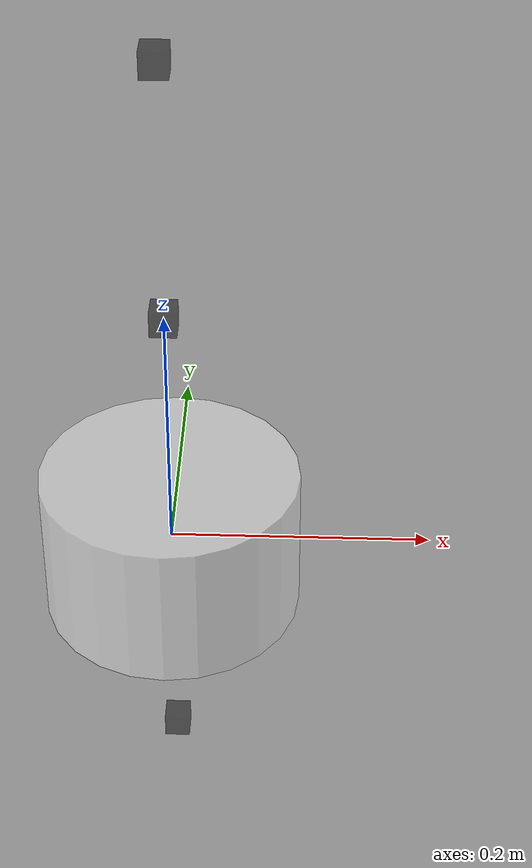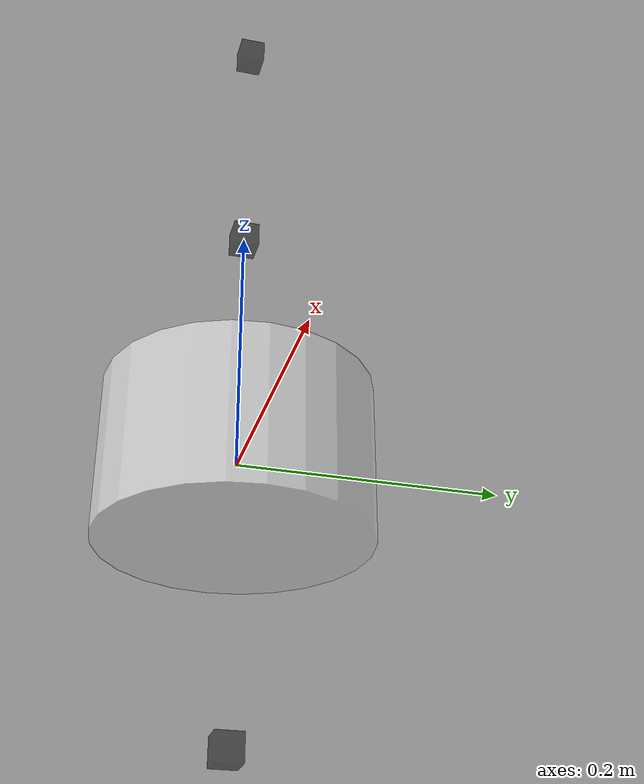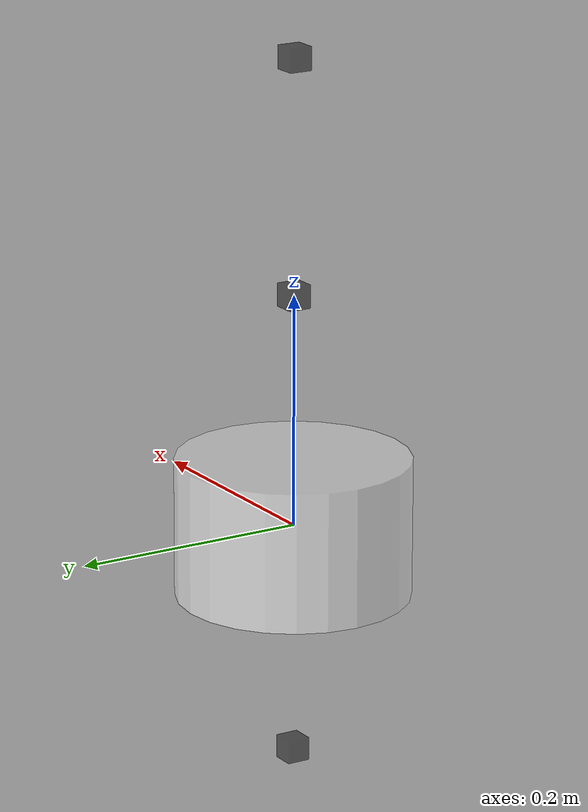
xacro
<?xml version="1.0"?>
<robot xmlns:xacro="http://www.ros.org/wiki/xacro" name="second_robot">
    <xacro:macro name="base_link" params="length radius">
        <link name="base_link">
            <visual>
                <origin xyz="0.0 0.0 0.0" rpy="0.0 0.0 0.0"/>
                <geometry>
                    <cylinder radius="${radius}" length="${length}"/>
                </geometry>
                <material name="white">
                    <color rgba="1.0 1.0 1.0 0.5"/>
                </material>
            </visual>
        </link>
    </xacro:macro>

    <xacro:macro name="imu_link" params="imu_name xyz">
        <link name="${imu_name}_link">
            <visual>
                <origin xyz="${xyz}" rpy="0.0 0.0 0.0"/>
                <geometry>
                    <box size="0.02 0.02 0.02"/>
                </geometry>
                <material name="black">
                    <color rgba="0.0 0.0 0.0 0.5"/>
                </material>
            </visual>
        </link>

        <joint name="${imu_name}_joint" type="fixed">
            <parent link="base_link"/>
            <child link="${imu_name}_link"/>
            <origin xyz="${xyz}" rpy="0.0 0.0 0.0"/>
        </joint>
    </xacro:macro>

    <xacro:base_link length="0.12" radius="0.10"/>
    <xacro:imu_link imu_name="imu01" xyz="0.0 0.0 -0.1"/>
    <xacro:imu_link imu_name="imu02" xyz="0.0 0.0 0.1"/>
    <xacro:imu_link imu_name="imu03" xyz="0.0 0.0 0.2"/>

</robot>
